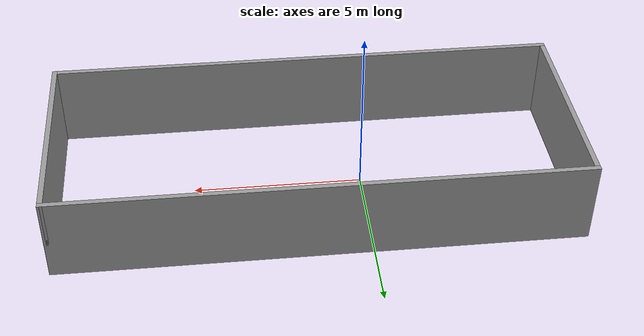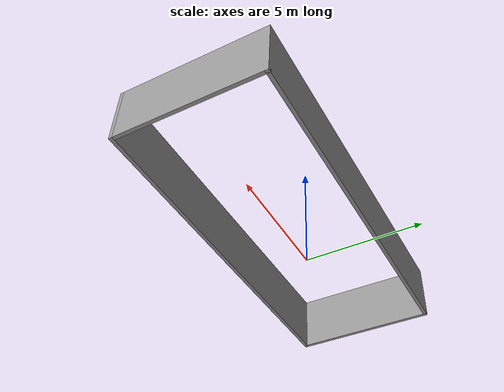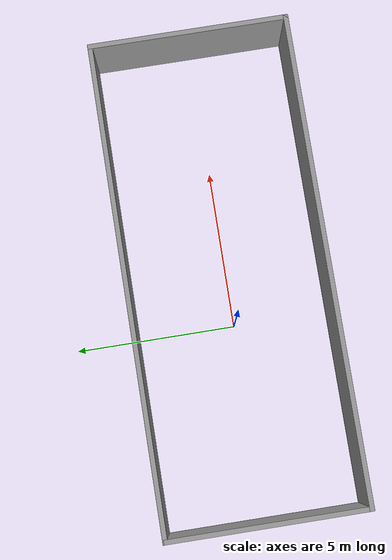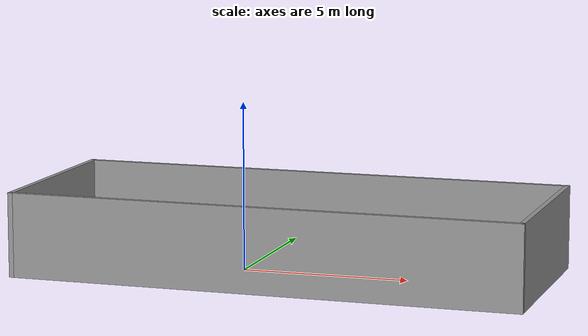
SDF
<?xml version='1.0'?>
<sdf version='1.6'>
  <model name='building'>
    <pose frame=''>1.45438 0.032509 0 0 -0 0</pose>
    <link name='Wall_49'>
      <collision name='Wall_49_Collision'>
        <geometry>
          <box>
            <size>6.21482 0.15 2.5</size>
          </box>
        </geometry>
        <pose frame=''>0 0 1.25 0 -0 0</pose>
      </collision>
      <visual name='Wall_49_Visual'>
        <pose frame=''>0 0 1.25 0 -0 0</pose>
        <geometry>
          <box>
            <size>6.21482 0.15 2.5</size>
          </box>
        </geometry>
        <material>
          <script>
            <uri>file://media/materials/scripts/gazebo.material</uri>
            <name>Gazebo/Grey</name>
          </script>
          <ambient>1 1 1 1</ambient>
        </material>
        <meta>
          <layer>0</layer>
        </meta>
      </visual>
      <pose frame=''>-7.55 -0.017589 0 0 -0 1.5708</pose>
    </link>
    <link name='Wall_51'>
      <collision name='Wall_51_Collision'>
        <geometry>
          <box>
            <size>15.25 0.15 2.5</size>
          </box>
        </geometry>
        <pose frame=''>0 0 1.25 0 -0 0</pose>
      </collision>
      <visual name='Wall_51_Visual'>
        <pose frame=''>0 0 1.25 0 -0 0</pose>
        <geometry>
          <box>
            <size>15.25 0.15 2.5</size>
          </box>
        </geometry>
        <material>
          <script>
            <uri>file://media/materials/scripts/gazebo.material</uri>
            <name>Gazebo/Grey</name>
          </script>
          <ambient>1 1 1 1</ambient>
        </material>
        <meta>
          <layer>0</layer>
        </meta>
      </visual>
      <pose frame=''>-0 3.05 0 0 -0 0</pose>
    </link>
    <link name='Wall_53'>
      <collision name='Wall_53_Collision'>
        <geometry>
          <box>
            <size>15.25 0.15 2.5</size>
          </box>
        </geometry>
        <pose frame=''>0 0 1.25 0 -0 0</pose>
      </collision>
      <visual name='Wall_53_Visual'>
        <pose frame=''>0 0 1.25 0 -0 0</pose>
        <geometry>
          <box>
            <size>15.25 0.15 2.5</size>
          </box>
        </geometry>
        <material>
          <script>
            <uri>file://media/materials/scripts/gazebo.material</uri>
            <name>Gazebo/Grey</name>
          </script>
          <ambient>1 1 1 1</ambient>
        </material>
        <meta>
          <layer>0</layer>
        </meta>
      </visual>
      <pose frame=''>-0 -3.05 0 0 -0 3.14159</pose>
    </link>
    <link name='Wall_58'>
      <collision name='Wall_58_Collision'>
        <geometry>
          <box>
            <size>6.25 0.15 2.5</size>
          </box>
        </geometry>
        <pose frame=''>0 0 1.25 0 -0 0</pose>
      </collision>
      <visual name='Wall_58_Visual'>
        <pose frame=''>0 0 1.25 0 -0 0</pose>
        <geometry>
          <box>
            <size>6.25 0.15 2.5</size>
          </box>
        </geometry>
        <material>
          <script>
            <uri>file://media/materials/scripts/gazebo.material</uri>
            <name>Gazebo/Grey</name>
          </script>
          <ambient>1 1 1 1</ambient>
        </material>
        <meta>
          <layer>0</layer>
        </meta>
      </visual>
      <pose frame=''>7.55 -0 0 0 -0 -1.5708</pose>
    </link>
    <static>1</static>
  </model>
</sdf>
